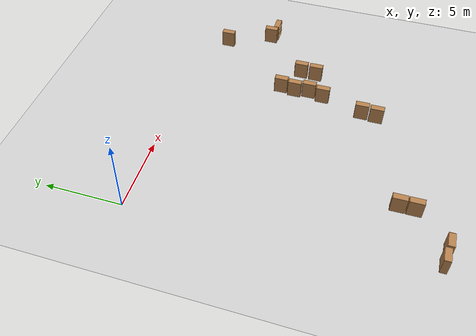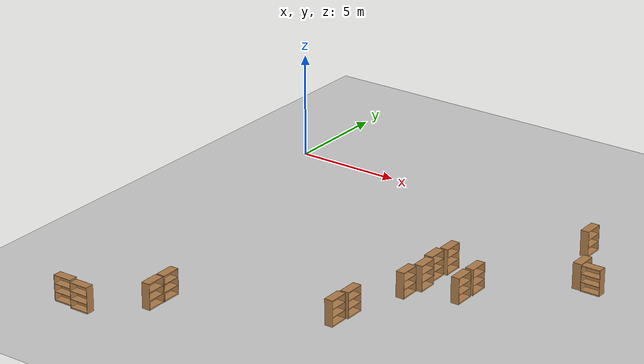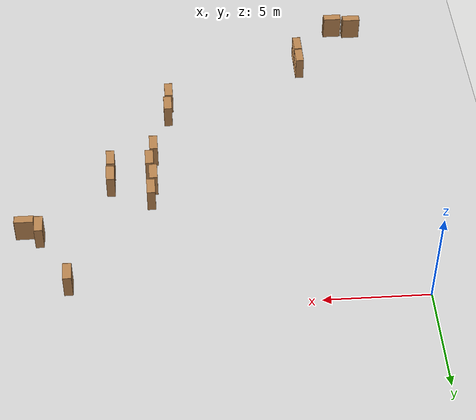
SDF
<sdf version="1.6">
 <world name="default">
  <model name="ground_plane">
   <static>1</static>
   <link name="link">
    <collision name="collision">
     <geometry><plane><normal>0 0 1</normal><size>100 100</size></plane></geometry>
     <surface>
      <contact><collide_bitmask>65535</collide_bitmask></contact>
      <friction><ode><mu>100</mu><mu2>50</mu2></ode></friction>
     </surface>
    </collision>
    <visual name="visual">
     <cast_shadows>0</cast_shadows>
     <geometry><plane><normal>0 0 1</normal><size>100 100</size></plane></geometry>
     <material>
      <script><uri>file://media/materials/scripts/gazebo.material</uri><name>Gazebo/Grey</name></script>
     </material>
    </visual>
   </link>
  </model>
  <model name="bookshelf_clone_clone_0_clone_clone_0_clone_5_clone_clone">
   <static>1</static>
   <link name="link">
    <inertial><mass>1</mass></inertial>
    <collision name="back">
     <pose>0 0.005 0.6 0 -0 0</pose>
     <geometry><box><size>0.9 0.01 1.2</size></box></geometry>
    </collision>
    <visual name="visual1">
     <pose>0 0.005 0.6 0 -0 0</pose>
     <geometry><box><size>0.9 0.01 1.2</size></box></geometry>
     <material>
      <script><uri>file://media/materials/scripts/gazebo.material</uri><name>Gazebo/Wood</name></script>
     </material>
    </visual>
    <collision name="left_side">
     <pose>0.45 -0.195 0.6 0 -0 0</pose>
     <geometry><box><size>0.02 0.4 1.2</size></box></geometry>
    </collision>
    <visual name="visual2">
     <pose>0.45 -0.195 0.6 0 -0 0</pose>
     <geometry><box><size>0.02 0.4 1.2</size></box></geometry>
     <material>
      <script><uri>file://media/materials/scripts/gazebo.material</uri><name>Gazebo/Wood</name></script>
     </material>
    </visual>
    <collision name="right_side">
     <pose>-0.45 -0.195 0.6 0 -0 0</pose>
     <geometry><box><size>0.02 0.4 1.2</size></box></geometry>
    </collision>
    <visual name="visual3">
     <pose>-0.45 -0.195 0.6 0 -0 0</pose>
     <geometry><box><size>0.02 0.4 1.2</size></box></geometry>
     <material>
      <script><uri>file://media/materials/scripts/gazebo.material</uri><name>Gazebo/Wood</name></script>
     </material>
    </visual>
    <collision name="bottom">
     <pose>0 -0.195 0.03 0 -0 0</pose>
     <geometry><box><size>0.88 0.4 0.06</size></box></geometry>
    </collision>
    <visual name="visual4">
     <pose>0 -0.195 0.03 0 -0 0</pose>
     <geometry><box><size>0.88 0.4 0.06</size></box></geometry>
     <material>
      <script><uri>file://media/materials/scripts/gazebo.material</uri><name>Gazebo/Wood</name></script>
     </material>
    </visual>
    <collision name="top">
     <pose>0 -0.195 1.19 0 -0 0</pose>
     <geometry><box><size>0.88 0.4 0.02</size></box></geometry>
    </collision>
    <visual name="visual5">
     <pose>0 -0.195 1.19 0 -0 0</pose>
     <geometry><box><size>0.88 0.4 0.02</size></box></geometry>
     <material>
      <script><uri>file://media/materials/scripts/gazebo.material</uri><name>Gazebo/Wood</name></script>
     </material>
    </visual>
    <collision name="low_shelf">
     <pose>0 -0.195 0.43 0 -0 0</pose>
     <geometry><box><size>0.88 0.4 0.02</size></box></geometry>
    </collision>
    <visual name="visual6">
     <pose>0 -0.195 0.43 0 -0 0</pose>
     <geometry><box><size>0.88 0.4 0.02</size></box></geometry>
     <material>
      <script><uri>file://media/materials/scripts/gazebo.material</uri><name>Gazebo/Wood</name></script>
     </material>
    </visual>
    <collision name="high_shelf">
     <pose>0 -0.195 0.8 0 -0 0</pose>
     <geometry><box><size>0.88 0.4 0.02</size></box></geometry>
    </collision>
    <visual name="visual7">
     <pose>0 -0.195 0.8 0 -0 0</pose>
     <geometry><box><size>0.88 0.4 0.02</size></box></geometry>
     <material>
      <script><uri>file://media/materials/scripts/gazebo.material</uri><name>Gazebo/Wood</name></script>
     </material>
    </visual>
   </link>
   <pose>11.3122 -12.3383 0 0 -0 1.58018</pose>
  </model>
  <model name="bookshelf_clone_clone_0_clone_clone_0_clone_5_clone_clone_0">
   <static>1</static>
   <link name="link">
    <inertial><mass>1</mass></inertial>
    <collision name="back">
     <pose>0 0.005 0.6 0 -0 0</pose>
     <geometry><box><size>0.9 0.01 1.2</size></box></geometry>
    </collision>
    <visual name="visual1">
     <pose>0 0.005 0.6 0 -0 0</pose>
     <geometry><box><size>0.9 0.01 1.2</size></box></geometry>
     <material>
      <script><uri>file://media/materials/scripts/gazebo.material</uri><name>Gazebo/Wood</name></script>
     </material>
    </visual>
    <collision name="left_side">
     <pose>0.45 -0.195 0.6 0 -0 0</pose>
     <geometry><box><size>0.02 0.4 1.2</size></box></geometry>
    </collision>
    <visual name="visual2">
     <pose>0.45 -0.195 0.6 0 -0 0</pose>
     <geometry><box><size>0.02 0.4 1.2</size></box></geometry>
     <material>
      <script><uri>file://media/materials/scripts/gazebo.material</uri><name>Gazebo/Wood</name></script>
     </material>
    </visual>
    <collision name="right_side">
     <pose>-0.45 -0.195 0.6 0 -0 0</pose>
     <geometry><box><size>0.02 0.4 1.2</size></box></geometry>
    </collision>
    <visual name="visual3">
     <pose>-0.45 -0.195 0.6 0 -0 0</pose>
     <geometry><box><size>0.02 0.4 1.2</size></box></geometry>
     <material>
      <script><uri>file://media/materials/scripts/gazebo.material</uri><name>Gazebo/Wood</name></script>
     </material>
    </visual>
    <collision name="bottom">
     <pose>0 -0.195 0.03 0 -0 0</pose>
     <geometry><box><size>0.88 0.4 0.06</size></box></geometry>
    </collision>
    <visual name="visual4">
     <pose>0 -0.195 0.03 0 -0 0</pose>
     <geometry><box><size>0.88 0.4 0.06</size></box></geometry>
     <material>
      <script><uri>file://media/materials/scripts/gazebo.material</uri><name>Gazebo/Wood</name></script>
     </material>
    </visual>
    <collision name="top">
     <pose>0 -0.195 1.19 0 -0 0</pose>
     <geometry><box><size>0.88 0.4 0.02</size></box></geometry>
    </collision>
    <visual name="visual5">
     <pose>0 -0.195 1.19 0 -0 0</pose>
     <geometry><box><size>0.88 0.4 0.02</size></box></geometry>
     <material>
      <script><uri>file://media/materials/scripts/gazebo.material</uri><name>Gazebo/Wood</name></script>
     </material>
    </visual>
    <collision name="low_shelf">
     <pose>0 -0.195 0.43 0 -0 0</pose>
     <geometry><box><size>0.88 0.4 0.02</size></box></geometry>
    </collision>
    <visual name="visual6">
     <pose>0 -0.195 0.43 0 -0 0</pose>
     <geometry><box><size>0.88 0.4 0.02</size></box></geometry>
     <material>
      <script><uri>file://media/materials/scripts/gazebo.material</uri><name>Gazebo/Wood</name></script>
     </material>
    </visual>
    <collision name="high_shelf">
     <pose>0 -0.195 0.8 0 -0 0</pose>
     <geometry><box><size>0.88 0.4 0.02</size></box></geometry>
    </collision>
    <visual name="visual7">
     <pose>0 -0.195 0.8 0 -0 0</pose>
     <geometry><box><size>0.88 0.4 0.02</size></box></geometry>
     <material>
      <script><uri>file://media/materials/scripts/gazebo.material</uri><name>Gazebo/Wood</name></script>
     </material>
    </visual>
   </link>
   <pose>11.2316 -13.3299 0 0 -0 1.58018</pose>
  </model>
  <model name="bookshelf_clone_clone_2_clone_7">
   <static>1</static>
   <link name="link">
    <inertial><mass>1</mass></inertial>
    <collision name="back">
     <pose>0 0.005 0.6 0 -0 0</pose>
     <geometry><box><size>0.9 0.01 1.2</size></box></geometry>
    </collision>
    <visual name="visual1">
     <pose>0 0.005 0.6 0 -0 0</pose>
     <geometry><box><size>0.9 0.01 1.2</size></box></geometry>
     <material>
      <script><uri>file://media/materials/scripts/gazebo.material</uri><name>Gazebo/Wood</name></script>
     </material>
    </visual>
    <collision name="left_side">
     <pose>0.45 -0.195 0.6 0 -0 0</pose>
     <geometry><box><size>0.02 0.4 1.2</size></box></geometry>
    </collision>
    <visual name="visual2">
     <pose>0.45 -0.195 0.6 0 -0 0</pose>
     <geometry><box><size>0.02 0.4 1.2</size></box></geometry>
     <material>
      <script><uri>file://media/materials/scripts/gazebo.material</uri><name>Gazebo/Wood</name></script>
     </material>
    </visual>
    <collision name="right_side">
     <pose>-0.45 -0.195 0.6 0 -0 0</pose>
     <geometry><box><size>0.02 0.4 1.2</size></box></geometry>
    </collision>
    <visual name="visual3">
     <pose>-0.45 -0.195 0.6 0 -0 0</pose>
     <geometry><box><size>0.02 0.4 1.2</size></box></geometry>
     <material>
      <script><uri>file://media/materials/scripts/gazebo.material</uri><name>Gazebo/Wood</name></script>
     </material>
    </visual>
    <collision name="bottom">
     <pose>0 -0.195 0.03 0 -0 0</pose>
     <geometry><box><size>0.88 0.4 0.06</size></box></geometry>
    </collision>
    <visual name="visual4">
     <pose>0 -0.195 0.03 0 -0 0</pose>
     <geometry><box><size>0.88 0.4 0.06</size></box></geometry>
     <material>
      <script><uri>file://media/materials/scripts/gazebo.material</uri><name>Gazebo/Wood</name></script>
     </material>
    </visual>
    <collision name="top">
     <pose>0 -0.195 1.19 0 -0 0</pose>
     <geometry><box><size>0.88 0.4 0.02</size></box></geometry>
    </collision>
    <visual name="visual5">
     <pose>0 -0.195 1.19 0 -0 0</pose>
     <geometry><box><size>0.88 0.4 0.02</size></box></geometry>
     <material>
      <script><uri>file://media/materials/scripts/gazebo.material</uri><name>Gazebo/Wood</name></script>
     </material>
    </visual>
    <collision name="low_shelf">
     <pose>0 -0.195 0.43 0 -0 0</pose>
     <geometry><box><size>0.88 0.4 0.02</size></box></geometry>
    </collision>
    <visual name="visual6">
     <pose>0 -0.195 0.43 0 -0 0</pose>
     <geometry><box><size>0.88 0.4 0.02</size></box></geometry>
     <material>
      <script><uri>file://media/materials/scripts/gazebo.material</uri><name>Gazebo/Wood</name></script>
     </material>
    </visual>
    <collision name="high_shelf">
     <pose>0 -0.195 0.8 0 -0 0</pose>
     <geometry><box><size>0.88 0.4 0.02</size></box></geometry>
    </collision>
    <visual name="visual7">
     <pose>0 -0.195 0.8 0 -0 0</pose>
     <geometry><box><size>0.88 0.4 0.02</size></box></geometry>
     <material>
      <script><uri>file://media/materials/scripts/gazebo.material</uri><name>Gazebo/Wood</name></script>
     </material>
    </visual>
   </link>
   <pose>1.3377 -18.2189 0 0 -0 0</pose>
  </model>
  <model name="bookshelf_clone_clone_2_clone_8">
   <static>1</static>
   <link name="link">
    <inertial><mass>1</mass></inertial>
    <collision name="back">
     <pose>0 0.005 0.6 0 -0 0</pose>
     <geometry><box><size>0.9 0.01 1.2</size></box></geometry>
    </collision>
    <visual name="visual1">
     <pose>0 0.005 0.6 0 -0 0</pose>
     <geometry><box><size>0.9 0.01 1.2</size></box></geometry>
     <material>
      <script><uri>file://media/materials/scripts/gazebo.material</uri><name>Gazebo/Wood</name></script>
     </material>
    </visual>
    <collision name="left_side">
     <pose>0.45 -0.195 0.6 0 -0 0</pose>
     <geometry><box><size>0.02 0.4 1.2</size></box></geometry>
    </collision>
    <visual name="visual2">
     <pose>0.45 -0.195 0.6 0 -0 0</pose>
     <geometry><box><size>0.02 0.4 1.2</size></box></geometry>
     <material>
      <script><uri>file://media/materials/scripts/gazebo.material</uri><name>Gazebo/Wood</name></script>
     </material>
    </visual>
    <collision name="right_side">
     <pose>-0.45 -0.195 0.6 0 -0 0</pose>
     <geometry><box><size>0.02 0.4 1.2</size></box></geometry>
    </collision>
    <visual name="visual3">
     <pose>-0.45 -0.195 0.6 0 -0 0</pose>
     <geometry><box><size>0.02 0.4 1.2</size></box></geometry>
     <material>
      <script><uri>file://media/materials/scripts/gazebo.material</uri><name>Gazebo/Wood</name></script>
     </material>
    </visual>
    <collision name="bottom">
     <pose>0 -0.195 0.03 0 -0 0</pose>
     <geometry><box><size>0.88 0.4 0.06</size></box></geometry>
    </collision>
    <visual name="visual4">
     <pose>0 -0.195 0.03 0 -0 0</pose>
     <geometry><box><size>0.88 0.4 0.06</size></box></geometry>
     <material>
      <script><uri>file://media/materials/scripts/gazebo.material</uri><name>Gazebo/Wood</name></script>
     </material>
    </visual>
    <collision name="top">
     <pose>0 -0.195 1.19 0 -0 0</pose>
     <geometry><box><size>0.88 0.4 0.02</size></box></geometry>
    </collision>
    <visual name="visual5">
     <pose>0 -0.195 1.19 0 -0 0</pose>
     <geometry><box><size>0.88 0.4 0.02</size></box></geometry>
     <material>
      <script><uri>file://media/materials/scripts/gazebo.material</uri><name>Gazebo/Wood</name></script>
     </material>
    </visual>
    <collision name="low_shelf">
     <pose>0 -0.195 0.43 0 -0 0</pose>
     <geometry><box><size>0.88 0.4 0.02</size></box></geometry>
    </collision>
    <visual name="visual6">
     <pose>0 -0.195 0.43 0 -0 0</pose>
     <geometry><box><size>0.88 0.4 0.02</size></box></geometry>
     <material>
      <script><uri>file://media/materials/scripts/gazebo.material</uri><name>Gazebo/Wood</name></script>
     </material>
    </visual>
    <collision name="high_shelf">
     <pose>0 -0.195 0.8 0 -0 0</pose>
     <geometry><box><size>0.88 0.4 0.02</size></box></geometry>
    </collision>
    <visual name="visual7">
     <pose>0 -0.195 0.8 0 -0 0</pose>
     <geometry><box><size>0.88 0.4 0.02</size></box></geometry>
     <material>
      <script><uri>file://media/materials/scripts/gazebo.material</uri><name>Gazebo/Wood</name></script>
     </material>
    </visual>
   </link>
   <pose>2.34071 -18.3606 0 0 -0 0</pose>
  </model>
  <model name="bookshelf_clone_clone_0_clone_clone_0_clone_5_clone_clone_clone">
   <static>1</static>
   <link name="link">
    <inertial><mass>1</mass></inertial>
    <collision name="back">
     <pose>0 0.005 0.6 0 -0 0</pose>
     <geometry><box><size>0.9 0.01 1.2</size></box></geometry>
    </collision>
    <visual name="visual1">
     <pose>0 0.005 0.6 0 -0 0</pose>
     <geometry><box><size>0.9 0.01 1.2</size></box></geometry>
     <material>
      <script><uri>file://media/materials/scripts/gazebo.material</uri><name>Gazebo/Wood</name></script>
     </material>
    </visual>
    <collision name="left_side">
     <pose>0.45 -0.195 0.6 0 -0 0</pose>
     <geometry><box><size>0.02 0.4 1.2</size></box></geometry>
    </collision>
    <visual name="visual2">
     <pose>0.45 -0.195 0.6 0 -0 0</pose>
     <geometry><box><size>0.02 0.4 1.2</size></box></geometry>
     <material>
      <script><uri>file://media/materials/scripts/gazebo.material</uri><name>Gazebo/Wood</name></script>
     </material>
    </visual>
    <collision name="right_side">
     <pose>-0.45 -0.195 0.6 0 -0 0</pose>
     <geometry><box><size>0.02 0.4 1.2</size></box></geometry>
    </collision>
    <visual name="visual3">
     <pose>-0.45 -0.195 0.6 0 -0 0</pose>
     <geometry><box><size>0.02 0.4 1.2</size></box></geometry>
     <material>
      <script><uri>file://media/materials/scripts/gazebo.material</uri><name>Gazebo/Wood</name></script>
     </material>
    </visual>
    <collision name="bottom">
     <pose>0 -0.195 0.03 0 -0 0</pose>
     <geometry><box><size>0.88 0.4 0.06</size></box></geometry>
    </collision>
    <visual name="visual4">
     <pose>0 -0.195 0.03 0 -0 0</pose>
     <geometry><box><size>0.88 0.4 0.06</size></box></geometry>
     <material>
      <script><uri>file://media/materials/scripts/gazebo.material</uri><name>Gazebo/Wood</name></script>
     </material>
    </visual>
    <collision name="top">
     <pose>0 -0.195 1.19 0 -0 0</pose>
     <geometry><box><size>0.88 0.4 0.02</size></box></geometry>
    </collision>
    <visual name="visual5">
     <pose>0 -0.195 1.19 0 -0 0</pose>
     <geometry><box><size>0.88 0.4 0.02</size></box></geometry>
     <material>
      <script><uri>file://media/materials/scripts/gazebo.material</uri><name>Gazebo/Wood</name></script>
     </material>
    </visual>
    <collision name="low_shelf">
     <pose>0 -0.195 0.43 0 -0 0</pose>
     <geometry><box><size>0.88 0.4 0.02</size></box></geometry>
    </collision>
    <visual name="visual6">
     <pose>0 -0.195 0.43 0 -0 0</pose>
     <geometry><box><size>0.88 0.4 0.02</size></box></geometry>
     <material>
      <script><uri>file://media/materials/scripts/gazebo.material</uri><name>Gazebo/Wood</name></script>
     </material>
    </visual>
    <collision name="high_shelf">
     <pose>0 -0.195 0.8 0 -0 0</pose>
     <geometry><box><size>0.88 0.4 0.02</size></box></geometry>
    </collision>
    <visual name="visual7">
     <pose>0 -0.195 0.8 0 -0 0</pose>
     <geometry><box><size>0.88 0.4 0.02</size></box></geometry>
     <material>
      <script><uri>file://media/materials/scripts/gazebo.material</uri><name>Gazebo/Wood</name></script>
     </material>
    </visual>
   </link>
   <pose>14.27 -7.56067 0 0 -0 1.58018</pose>
  </model>
  <model name="bookshelf_clone_clone_0_clone_clone_0_clone_5_clone_clone_clone_0">
   <static>1</static>
   <link name="link">
    <inertial><mass>1</mass></inertial>
    <collision name="back">
     <pose>0 0.005 0.6 0 -0 0</pose>
     <geometry><box><size>0.9 0.01 1.2</size></box></geometry>
    </collision>
    <visual name="visual1">
     <pose>0 0.005 0.6 0 -0 0</pose>
     <geometry><box><size>0.9 0.01 1.2</size></box></geometry>
     <material>
      <script><uri>file://media/materials/scripts/gazebo.material</uri><name>Gazebo/Wood</name></script>
     </material>
    </visual>
    <collision name="left_side">
     <pose>0.45 -0.195 0.6 0 -0 0</pose>
     <geometry><box><size>0.02 0.4 1.2</size></box></geometry>
    </collision>
    <visual name="visual2">
     <pose>0.45 -0.195 0.6 0 -0 0</pose>
     <geometry><box><size>0.02 0.4 1.2</size></box></geometry>
     <material>
      <script><uri>file://media/materials/scripts/gazebo.material</uri><name>Gazebo/Wood</name></script>
     </material>
    </visual>
    <collision name="right_side">
     <pose>-0.45 -0.195 0.6 0 -0 0</pose>
     <geometry><box><size>0.02 0.4 1.2</size></box></geometry>
    </collision>
    <visual name="visual3">
     <pose>-0.45 -0.195 0.6 0 -0 0</pose>
     <geometry><box><size>0.02 0.4 1.2</size></box></geometry>
     <material>
      <script><uri>file://media/materials/scripts/gazebo.material</uri><name>Gazebo/Wood</name></script>
     </material>
    </visual>
    <collision name="bottom">
     <pose>0 -0.195 0.03 0 -0 0</pose>
     <geometry><box><size>0.88 0.4 0.06</size></box></geometry>
    </collision>
    <visual name="visual4">
     <pose>0 -0.195 0.03 0 -0 0</pose>
     <geometry><box><size>0.88 0.4 0.06</size></box></geometry>
     <material>
      <script><uri>file://media/materials/scripts/gazebo.material</uri><name>Gazebo/Wood</name></script>
     </material>
    </visual>
    <collision name="top">
     <pose>0 -0.195 1.19 0 -0 0</pose>
     <geometry><box><size>0.88 0.4 0.02</size></box></geometry>
    </collision>
    <visual name="visual5">
     <pose>0 -0.195 1.19 0 -0 0</pose>
     <geometry><box><size>0.88 0.4 0.02</size></box></geometry>
     <material>
      <script><uri>file://media/materials/scripts/gazebo.material</uri><name>Gazebo/Wood</name></script>
     </material>
    </visual>
    <collision name="low_shelf">
     <pose>0 -0.195 0.43 0 -0 0</pose>
     <geometry><box><size>0.88 0.4 0.02</size></box></geometry>
    </collision>
    <visual name="visual6">
     <pose>0 -0.195 0.43 0 -0 0</pose>
     <geometry><box><size>0.88 0.4 0.02</size></box></geometry>
     <material>
      <script><uri>file://media/materials/scripts/gazebo.material</uri><name>Gazebo/Wood</name></script>
     </material>
    </visual>
    <collision name="high_shelf">
     <pose>0 -0.195 0.8 0 -0 0</pose>
     <geometry><box><size>0.88 0.4 0.02</size></box></geometry>
    </collision>
    <visual name="visual7">
     <pose>0 -0.195 0.8 0 -0 0</pose>
     <geometry><box><size>0.88 0.4 0.02</size></box></geometry>
     <material>
      <script><uri>file://media/materials/scripts/gazebo.material</uri><name>Gazebo/Wood</name></script>
     </material>
    </visual>
   </link>
   <pose>14.2552 -8.60884 0 0 -0 1.58018</pose>
  </model>
  <model name="bookshelf_clone_clone_2_clone_9">
   <static>1</static>
   <link name="link">
    <inertial><mass>1</mass></inertial>
    <collision name="back">
     <pose>0 0.005 0.6 0 -0 0</pose>
     <geometry><box><size>0.9 0.01 1.2</size></box></geometry>
    </collision>
    <visual name="visual1">
     <pose>0 0.005 0.6 0 -0 0</pose>
     <geometry><box><size>0.9 0.01 1.2</size></box></geometry>
     <material>
      <script><uri>file://media/materials/scripts/gazebo.material</uri><name>Gazebo/Wood</name></script>
     </material>
    </visual>
    <collision name="left_side">
     <pose>0.45 -0.195 0.6 0 -0 0</pose>
     <geometry><box><size>0.02 0.4 1.2</size></box></geometry>
    </collision>
    <visual name="visual2">
     <pose>0.45 -0.195 0.6 0 -0 0</pose>
     <geometry><box><size>0.02 0.4 1.2</size></box></geometry>
     <material>
      <script><uri>file://media/materials/scripts/gazebo.material</uri><name>Gazebo/Wood</name></script>
     </material>
    </visual>
    <collision name="right_side">
     <pose>-0.45 -0.195 0.6 0 -0 0</pose>
     <geometry><box><size>0.02 0.4 1.2</size></box></geometry>
    </collision>
    <visual name="visual3">
     <pose>-0.45 -0.195 0.6 0 -0 0</pose>
     <geometry><box><size>0.02 0.4 1.2</size></box></geometry>
     <material>
      <script><uri>file://media/materials/scripts/gazebo.material</uri><name>Gazebo/Wood</name></script>
     </material>
    </visual>
    <collision name="bottom">
     <pose>0 -0.195 0.03 0 -0 0</pose>
     <geometry><box><size>0.88 0.4 0.06</size></box></geometry>
    </collision>
    <visual name="visual4">
     <pose>0 -0.195 0.03 0 -0 0</pose>
     <geometry><box><size>0.88 0.4 0.06</size></box></geometry>
     <material>
      <script><uri>file://media/materials/scripts/gazebo.material</uri><name>Gazebo/Wood</name></script>
     </material>
    </visual>
    <collision name="top">
     <pose>0 -0.195 1.19 0 -0 0</pose>
     <geometry><box><size>0.88 0.4 0.02</size></box></geometry>
    </collision>
    <visual name="visual5">
     <pose>0 -0.195 1.19 0 -0 0</pose>
     <geometry><box><size>0.88 0.4 0.02</size></box></geometry>
     <material>
      <script><uri>file://media/materials/scripts/gazebo.material</uri><name>Gazebo/Wood</name></script>
     </material>
    </visual>
    <collision name="low_shelf">
     <pose>0 -0.195 0.43 0 -0 0</pose>
     <geometry><box><size>0.88 0.4 0.02</size></box></geometry>
    </collision>
    <visual name="visual6">
     <pose>0 -0.195 0.43 0 -0 0</pose>
     <geometry><box><size>0.88 0.4 0.02</size></box></geometry>
     <material>
      <script><uri>file://media/materials/scripts/gazebo.material</uri><name>Gazebo/Wood</name></script>
     </material>
    </visual>
    <collision name="high_shelf">
     <pose>0 -0.195 0.8 0 -0 0</pose>
     <geometry><box><size>0.88 0.4 0.02</size></box></geometry>
    </collision>
    <visual name="visual7">
     <pose>0 -0.195 0.8 0 -0 0</pose>
     <geometry><box><size>0.88 0.4 0.02</size></box></geometry>
     <material>
      <script><uri>file://media/materials/scripts/gazebo.material</uri><name>Gazebo/Wood</name></script>
     </material>
    </visual>
   </link>
   <pose>18.5176 -4.59749 0 0 -0 0</pose>
  </model>
  <model name="bookshelf_clone_clone_0_clone_clone_0_clone_5_clone_clone_clone_clone">
   <static>1</static>
   <link name="link">
    <inertial><mass>1</mass></inertial>
    <collision name="back">
     <pose>0 0.005 0.6 0 -0 0</pose>
     <geometry><box><size>0.9 0.01 1.2</size></box></geometry>
    </collision>
    <visual name="visual1">
     <pose>0 0.005 0.6 0 -0 0</pose>
     <geometry><box><size>0.9 0.01 1.2</size></box></geometry>
     <material>
      <script><uri>file://media/materials/scripts/gazebo.material</uri><name>Gazebo/Wood</name></script>
     </material>
    </visual>
    <collision name="left_side">
     <pose>0.45 -0.195 0.6 0 -0 0</pose>
     <geometry><box><size>0.02 0.4 1.2</size></box></geometry>
    </collision>
    <visual name="visual2">
     <pose>0.45 -0.195 0.6 0 -0 0</pose>
     <geometry><box><size>0.02 0.4 1.2</size></box></geometry>
     <material>
      <script><uri>file://media/materials/scripts/gazebo.material</uri><name>Gazebo/Wood</name></script>
     </material>
    </visual>
    <collision name="right_side">
     <pose>-0.45 -0.195 0.6 0 -0 0</pose>
     <geometry><box><size>0.02 0.4 1.2</size></box></geometry>
    </collision>
    <visual name="visual3">
     <pose>-0.45 -0.195 0.6 0 -0 0</pose>
     <geometry><box><size>0.02 0.4 1.2</size></box></geometry>
     <material>
      <script><uri>file://media/materials/scripts/gazebo.material</uri><name>Gazebo/Wood</name></script>
     </material>
    </visual>
    <collision name="bottom">
     <pose>0 -0.195 0.03 0 -0 0</pose>
     <geometry><box><size>0.88 0.4 0.06</size></box></geometry>
    </collision>
    <visual name="visual4">
     <pose>0 -0.195 0.03 0 -0 0</pose>
     <geometry><box><size>0.88 0.4 0.06</size></box></geometry>
     <material>
      <script><uri>file://media/materials/scripts/gazebo.material</uri><name>Gazebo/Wood</name></script>
     </material>
    </visual>
    <collision name="top">
     <pose>0 -0.195 1.19 0 -0 0</pose>
     <geometry><box><size>0.88 0.4 0.02</size></box></geometry>
    </collision>
    <visual name="visual5">
     <pose>0 -0.195 1.19 0 -0 0</pose>
     <geometry><box><size>0.88 0.4 0.02</size></box></geometry>
     <material>
      <script><uri>file://media/materials/scripts/gazebo.material</uri><name>Gazebo/Wood</name></script>
     </material>
    </visual>
    <collision name="low_shelf">
     <pose>0 -0.195 0.43 0 -0 0</pose>
     <geometry><box><size>0.88 0.4 0.02</size></box></geometry>
    </collision>
    <visual name="visual6">
     <pose>0 -0.195 0.43 0 -0 0</pose>
     <geometry><box><size>0.88 0.4 0.02</size></box></geometry>
     <material>
      <script><uri>file://media/materials/scripts/gazebo.material</uri><name>Gazebo/Wood</name></script>
     </material>
    </visual>
    <collision name="high_shelf">
     <pose>0 -0.195 0.8 0 -0 0</pose>
     <geometry><box><size>0.88 0.4 0.02</size></box></geometry>
    </collision>
    <visual name="visual7">
     <pose>0 -0.195 0.8 0 -0 0</pose>
     <geometry><box><size>0.88 0.4 0.02</size></box></geometry>
     <material>
      <script><uri>file://media/materials/scripts/gazebo.material</uri><name>Gazebo/Wood</name></script>
     </material>
    </visual>
   </link>
   <pose>17.6346 -4.48585 0 0 -0 1.58018</pose>
  </model>
  <model name="bookshelf_clone_clone_0_clone_clone_0_clone_5_clone_clone_clone_0_clone">
   <static>1</static>
   <link name="link">
    <inertial><mass>1</mass></inertial>
    <collision name="back">
     <pose>0 0.005 0.6 0 -0 0</pose>
     <geometry><box><size>0.9 0.01 1.2</size></box></geometry>
    </collision>
    <visual name="visual1">
     <pose>0 0.005 0.6 0 -0 0</pose>
     <geometry><box><size>0.9 0.01 1.2</size></box></geometry>
     <material>
      <script><uri>file://media/materials/scripts/gazebo.material</uri><name>Gazebo/Wood</name></script>
     </material>
    </visual>
    <collision name="left_side">
     <pose>0.45 -0.195 0.6 0 -0 0</pose>
     <geometry><box><size>0.02 0.4 1.2</size></box></geometry>
    </collision>
    <visual name="visual2">
     <pose>0.45 -0.195 0.6 0 -0 0</pose>
     <geometry><box><size>0.02 0.4 1.2</size></box></geometry>
     <material>
      <script><uri>file://media/materials/scripts/gazebo.material</uri><name>Gazebo/Wood</name></script>
     </material>
    </visual>
    <collision name="right_side">
     <pose>-0.45 -0.195 0.6 0 -0 0</pose>
     <geometry><box><size>0.02 0.4 1.2</size></box></geometry>
    </collision>
    <visual name="visual3">
     <pose>-0.45 -0.195 0.6 0 -0 0</pose>
     <geometry><box><size>0.02 0.4 1.2</size></box></geometry>
     <material>
      <script><uri>file://media/materials/scripts/gazebo.material</uri><name>Gazebo/Wood</name></script>
     </material>
    </visual>
    <collision name="bottom">
     <pose>0 -0.195 0.03 0 -0 0</pose>
     <geometry><box><size>0.88 0.4 0.06</size></box></geometry>
    </collision>
    <visual name="visual4">
     <pose>0 -0.195 0.03 0 -0 0</pose>
     <geometry><box><size>0.88 0.4 0.06</size></box></geometry>
     <material>
      <script><uri>file://media/materials/scripts/gazebo.material</uri><name>Gazebo/Wood</name></script>
     </material>
    </visual>
    <collision name="top">
     <pose>0 -0.195 1.19 0 -0 0</pose>
     <geometry><box><size>0.88 0.4 0.02</size></box></geometry>
    </collision>
    <visual name="visual5">
     <pose>0 -0.195 1.19 0 -0 0</pose>
     <geometry><box><size>0.88 0.4 0.02</size></box></geometry>
     <material>
      <script><uri>file://media/materials/scripts/gazebo.material</uri><name>Gazebo/Wood</name></script>
     </material>
    </visual>
    <collision name="low_shelf">
     <pose>0 -0.195 0.43 0 -0 0</pose>
     <geometry><box><size>0.88 0.4 0.02</size></box></geometry>
    </collision>
    <visual name="visual6">
     <pose>0 -0.195 0.43 0 -0 0</pose>
     <geometry><box><size>0.88 0.4 0.02</size></box></geometry>
     <material>
      <script><uri>file://media/materials/scripts/gazebo.material</uri><name>Gazebo/Wood</name></script>
     </material>
    </visual>
    <collision name="high_shelf">
     <pose>0 -0.195 0.8 0 -0 0</pose>
     <geometry><box><size>0.88 0.4 0.02</size></box></geometry>
    </collision>
    <visual name="visual7">
     <pose>0 -0.195 0.8 0 -0 0</pose>
     <geometry><box><size>0.88 0.4 0.02</size></box></geometry>
     <material>
      <script><uri>file://media/materials/scripts/gazebo.material</uri><name>Gazebo/Wood</name></script>
     </material>
    </visual>
   </link>
   <pose>12.3349 -6.56038 0 0 -0 1.58018</pose>
  </model>
  <model name="bookshelf_clone_clone_0_clone_clone_0_clone_5_clone_clone_clone_0_clone_0">
   <static>1</static>
   <link name="link">
    <inertial><mass>1</mass></inertial>
    <collision name="back">
     <pose>0 0.005 0.6 0 -0 0</pose>
     <geometry><box><size>0.9 0.01 1.2</size></box></geometry>
    </collision>
    <visual name="visual1">
     <pose>0 0.005 0.6 0 -0 0</pose>
     <geometry><box><size>0.9 0.01 1.2</size></box></geometry>
     <material>
      <script><uri>file://media/materials/scripts/gazebo.material</uri><name>Gazebo/Wood</name></script>
     </material>
    </visual>
    <collision name="left_side">
     <pose>0.45 -0.195 0.6 0 -0 0</pose>
     <geometry><box><size>0.02 0.4 1.2</size></box></geometry>
    </collision>
    <visual name="visual2">
     <pose>0.45 -0.195 0.6 0 -0 0</pose>
     <geometry><box><size>0.02 0.4 1.2</size></box></geometry>
     <material>
      <script><uri>file://media/materials/scripts/gazebo.material</uri><name>Gazebo/Wood</name></script>
     </material>
    </visual>
    <collision name="right_side">
     <pose>-0.45 -0.195 0.6 0 -0 0</pose>
     <geometry><box><size>0.02 0.4 1.2</size></box></geometry>
    </collision>
    <visual name="visual3">
     <pose>-0.45 -0.195 0.6 0 -0 0</pose>
     <geometry><box><size>0.02 0.4 1.2</size></box></geometry>
     <material>
      <script><uri>file://media/materials/scripts/gazebo.material</uri><name>Gazebo/Wood</name></script>
     </material>
    </visual>
    <collision name="bottom">
     <pose>0 -0.195 0.03 0 -0 0</pose>
     <geometry><box><size>0.88 0.4 0.06</size></box></geometry>
    </collision>
    <visual name="visual4">
     <pose>0 -0.195 0.03 0 -0 0</pose>
     <geometry><box><size>0.88 0.4 0.06</size></box></geometry>
     <material>
      <script><uri>file://media/materials/scripts/gazebo.material</uri><name>Gazebo/Wood</name></script>
     </material>
    </visual>
    <collision name="top">
     <pose>0 -0.195 1.19 0 -0 0</pose>
     <geometry><box><size>0.88 0.4 0.02</size></box></geometry>
    </collision>
    <visual name="visual5">
     <pose>0 -0.195 1.19 0 -0 0</pose>
     <geometry><box><size>0.88 0.4 0.02</size></box></geometry>
     <material>
      <script><uri>file://media/materials/scripts/gazebo.material</uri><name>Gazebo/Wood</name></script>
     </material>
    </visual>
    <collision name="low_shelf">
     <pose>0 -0.195 0.43 0 -0 0</pose>
     <geometry><box><size>0.88 0.4 0.02</size></box></geometry>
    </collision>
    <visual name="visual6">
     <pose>0 -0.195 0.43 0 -0 0</pose>
     <geometry><box><size>0.88 0.4 0.02</size></box></geometry>
     <material>
      <script><uri>file://media/materials/scripts/gazebo.material</uri><name>Gazebo/Wood</name></script>
     </material>
    </visual>
    <collision name="high_shelf">
     <pose>0 -0.195 0.8 0 -0 0</pose>
     <geometry><box><size>0.88 0.4 0.02</size></box></geometry>
    </collision>
    <visual name="visual7">
     <pose>0 -0.195 0.8 0 -0 0</pose>
     <geometry><box><size>0.88 0.4 0.02</size></box></geometry>
     <material>
      <script><uri>file://media/materials/scripts/gazebo.material</uri><name>Gazebo/Wood</name></script>
     </material>
    </visual>
   </link>
   <pose>12.1992 -7.5447 0 0 -0 1.58018</pose>
  </model>
  <model name="bookshelf_clone_clone_0_clone_clone_0_clone_5_clone_clone_clone_0_clone_1">
   <static>1</static>
   <link name="link">
    <inertial><mass>1</mass></inertial>
    <collision name="back">
     <pose>0 0.005 0.6 0 -0 0</pose>
     <geometry><box><size>0.9 0.01 1.2</size></box></geometry>
    </collision>
    <visual name="visual1">
     <pose>0 0.005 0.6 0 -0 0</pose>
     <geometry><box><size>0.9 0.01 1.2</size></box></geometry>
     <material>
      <script><uri>file://media/materials/scripts/gazebo.material</uri><name>Gazebo/Wood</name></script>
     </material>
    </visual>
    <collision name="left_side">
     <pose>0.45 -0.195 0.6 0 -0 0</pose>
     <geometry><box><size>0.02 0.4 1.2</size></box></geometry>
    </collision>
    <visual name="visual2">
     <pose>0.45 -0.195 0.6 0 -0 0</pose>
     <geometry><box><size>0.02 0.4 1.2</size></box></geometry>
     <material>
      <script><uri>file://media/materials/scripts/gazebo.material</uri><name>Gazebo/Wood</name></script>
     </material>
    </visual>
    <collision name="right_side">
     <pose>-0.45 -0.195 0.6 0 -0 0</pose>
     <geometry><box><size>0.02 0.4 1.2</size></box></geometry>
    </collision>
    <visual name="visual3">
     <pose>-0.45 -0.195 0.6 0 -0 0</pose>
     <geometry><box><size>0.02 0.4 1.2</size></box></geometry>
     <material>
      <script><uri>file://media/materials/scripts/gazebo.material</uri><name>Gazebo/Wood</name></script>
     </material>
    </visual>
    <collision name="bottom">
     <pose>0 -0.195 0.03 0 -0 0</pose>
     <geometry><box><size>0.88 0.4 0.06</size></box></geometry>
    </collision>
    <visual name="visual4">
     <pose>0 -0.195 0.03 0 -0 0</pose>
     <geometry><box><size>0.88 0.4 0.06</size></box></geometry>
     <material>
      <script><uri>file://media/materials/scripts/gazebo.material</uri><name>Gazebo/Wood</name></script>
     </material>
    </visual>
    <collision name="top">
     <pose>0 -0.195 1.19 0 -0 0</pose>
     <geometry><box><size>0.88 0.4 0.02</size></box></geometry>
    </collision>
    <visual name="visual5">
     <pose>0 -0.195 1.19 0 -0 0</pose>
     <geometry><box><size>0.88 0.4 0.02</size></box></geometry>
     <material>
      <script><uri>file://media/materials/scripts/gazebo.material</uri><name>Gazebo/Wood</name></script>
     </material>
    </visual>
    <collision name="low_shelf">
     <pose>0 -0.195 0.43 0 -0 0</pose>
     <geometry><box><size>0.88 0.4 0.02</size></box></geometry>
    </collision>
    <visual name="visual6">
     <pose>0 -0.195 0.43 0 -0 0</pose>
     <geometry><box><size>0.88 0.4 0.02</size></box></geometry>
     <material>
      <script><uri>file://media/materials/scripts/gazebo.material</uri><name>Gazebo/Wood</name></script>
     </material>
    </visual>
    <collision name="high_shelf">
     <pose>0 -0.195 0.8 0 -0 0</pose>
     <geometry><box><size>0.88 0.4 0.02</size></box></geometry>
    </collision>
    <visual name="visual7">
     <pose>0 -0.195 0.8 0 -0 0</pose>
     <geometry><box><size>0.88 0.4 0.02</size></box></geometry>
     <material>
      <script><uri>file://media/materials/scripts/gazebo.material</uri><name>Gazebo/Wood</name></script>
     </material>
    </visual>
   </link>
   <pose>12.3574 -8.5326 0 0 -0 1.58018</pose>
  </model>
  <model name="bookshelf_clone_clone_0_clone_clone_0_clone_5_clone_clone_clone_0_clone_2">
   <static>1</static>
   <link name="link">
    <inertial><mass>1</mass></inertial>
    <collision name="back">
     <pose>0 0.005 0.6 0 -0 0</pose>
     <geometry><box><size>0.9 0.01 1.2</size></box></geometry>
    </collision>
    <visual name="visual1">
     <pose>0 0.005 0.6 0 -0 0</pose>
     <geometry><box><size>0.9 0.01 1.2</size></box></geometry>
     <material>
      <script><uri>file://media/materials/scripts/gazebo.material</uri><name>Gazebo/Wood</name></script>
     </material>
    </visual>
    <collision name="left_side">
     <pose>0.45 -0.195 0.6 0 -0 0</pose>
     <geometry><box><size>0.02 0.4 1.2</size></box></geometry>
    </collision>
    <visual name="visual2">
     <pose>0.45 -0.195 0.6 0 -0 0</pose>
     <geometry><box><size>0.02 0.4 1.2</size></box></geometry>
     <material>
      <script><uri>file://media/materials/scripts/gazebo.material</uri><name>Gazebo/Wood</name></script>
     </material>
    </visual>
    <collision name="right_side">
     <pose>-0.45 -0.195 0.6 0 -0 0</pose>
     <geometry><box><size>0.02 0.4 1.2</size></box></geometry>
    </collision>
    <visual name="visual3">
     <pose>-0.45 -0.195 0.6 0 -0 0</pose>
     <geometry><box><size>0.02 0.4 1.2</size></box></geometry>
     <material>
      <script><uri>file://media/materials/scripts/gazebo.material</uri><name>Gazebo/Wood</name></script>
     </material>
    </visual>
    <collision name="bottom">
     <pose>0 -0.195 0.03 0 -0 0</pose>
     <geometry><box><size>0.88 0.4 0.06</size></box></geometry>
    </collision>
    <visual name="visual4">
     <pose>0 -0.195 0.03 0 -0 0</pose>
     <geometry><box><size>0.88 0.4 0.06</size></box></geometry>
     <material>
      <script><uri>file://media/materials/scripts/gazebo.material</uri><name>Gazebo/Wood</name></script>
     </material>
    </visual>
    <collision name="top">
     <pose>0 -0.195 1.19 0 -0 0</pose>
     <geometry><box><size>0.88 0.4 0.02</size></box></geometry>
    </collision>
    <visual name="visual5">
     <pose>0 -0.195 1.19 0 -0 0</pose>
     <geometry><box><size>0.88 0.4 0.02</size></box></geometry>
     <material>
      <script><uri>file://media/materials/scripts/gazebo.material</uri><name>Gazebo/Wood</name></script>
     </material>
    </visual>
    <collision name="low_shelf">
     <pose>0 -0.195 0.43 0 -0 0</pose>
     <geometry><box><size>0.88 0.4 0.02</size></box></geometry>
    </collision>
    <visual name="visual6">
     <pose>0 -0.195 0.43 0 -0 0</pose>
     <geometry><box><size>0.88 0.4 0.02</size></box></geometry>
     <material>
      <script><uri>file://media/materials/scripts/gazebo.material</uri><name>Gazebo/Wood</name></script>
     </material>
    </visual>
    <collision name="high_shelf">
     <pose>0 -0.195 0.8 0 -0 0</pose>
     <geometry><box><size>0.88 0.4 0.02</size></box></geometry>
    </collision>
    <visual name="visual7">
     <pose>0 -0.195 0.8 0 -0 0</pose>
     <geometry><box><size>0.88 0.4 0.02</size></box></geometry>
     <material>
      <script><uri>file://media/materials/scripts/gazebo.material</uri><name>Gazebo/Wood</name></script>
     </material>
    </visual>
   </link>
   <pose>12.1268 -9.5251 0 0 -0 1.58018</pose>
  </model>
  <model name="bookshelf_clone_clone_0_clone_clone_0_clone_5_clone_clone_0_clone">
   <static>1</static>
   <link name="link">
    <inertial><mass>1</mass></inertial>
    <collision name="back">
     <pose>0 0.005 0.6 0 -0 0</pose>
     <geometry><box><size>0.9 0.01 1.2</size></box></geometry>
    </collision>
    <visual name="visual1">
     <pose>0 0.005 0.6 0 -0 0</pose>
     <geometry><box><size>0.9 0.01 1.2</size></box></geometry>
     <material>
      <script><uri>file://media/materials/scripts/gazebo.material</uri><name>Gazebo/Wood</name></script>
     </material>
    </visual>
    <collision name="left_side">
     <pose>0.45 -0.195 0.6 0 -0 0</pose>
     <geometry><box><size>0.02 0.4 1.2</size></box></geometry>
    </collision>
    <visual name="visual2">
     <pose>0.45 -0.195 0.6 0 -0 0</pose>
     <geometry><box><size>0.02 0.4 1.2</size></box></geometry>
     <material>
      <script><uri>file://media/materials/scripts/gazebo.material</uri><name>Gazebo/Wood</name></script>
     </material>
    </visual>
    <collision name="right_side">
     <pose>-0.45 -0.195 0.6 0 -0 0</pose>
     <geometry><box><size>0.02 0.4 1.2</size></box></geometry>
    </collision>
    <visual name="visual3">
     <pose>-0.45 -0.195 0.6 0 -0 0</pose>
     <geometry><box><size>0.02 0.4 1.2</size></box></geometry>
     <material>
      <script><uri>file://media/materials/scripts/gazebo.material</uri><name>Gazebo/Wood</name></script>
     </material>
    </visual>
    <collision name="bottom">
     <pose>0 -0.195 0.03 0 -0 0</pose>
     <geometry><box><size>0.88 0.4 0.06</size></box></geometry>
    </collision>
    <visual name="visual4">
     <pose>0 -0.195 0.03 0 -0 0</pose>
     <geometry><box><size>0.88 0.4 0.06</size></box></geometry>
     <material>
      <script><uri>file://media/materials/scripts/gazebo.material</uri><name>Gazebo/Wood</name></script>
     </material>
    </visual>
    <collision name="top">
     <pose>0 -0.195 1.19 0 -0 0</pose>
     <geometry><box><size>0.88 0.4 0.02</size></box></geometry>
    </collision>
    <visual name="visual5">
     <pose>0 -0.195 1.19 0 -0 0</pose>
     <geometry><box><size>0.88 0.4 0.02</size></box></geometry>
     <material>
      <script><uri>file://media/materials/scripts/gazebo.material</uri><name>Gazebo/Wood</name></script>
     </material>
    </visual>
    <collision name="low_shelf">
     <pose>0 -0.195 0.43 0 -0 0</pose>
     <geometry><box><size>0.88 0.4 0.02</size></box></geometry>
    </collision>
    <visual name="visual6">
     <pose>0 -0.195 0.43 0 -0 0</pose>
     <geometry><box><size>0.88 0.4 0.02</size></box></geometry>
     <material>
      <script><uri>file://media/materials/scripts/gazebo.material</uri><name>Gazebo/Wood</name></script>
     </material>
    </visual>
    <collision name="high_shelf">
     <pose>0 -0.195 0.8 0 -0 0</pose>
     <geometry><box><size>0.88 0.4 0.02</size></box></geometry>
    </collision>
    <visual name="visual7">
     <pose>0 -0.195 0.8 0 -0 0</pose>
     <geometry><box><size>0.88 0.4 0.02</size></box></geometry>
     <material>
      <script><uri>file://media/materials/scripts/gazebo.material</uri><name>Gazebo/Wood</name></script>
     </material>
    </visual>
   </link>
   <pose>4.25837 -16.5379 0 0 -0 1.58018</pose>
  </model>
  <model name="bookshelf_clone_clone_0_clone_clone_0_clone_5_clone_clone_0_clone_0">
   <static>1</static>
   <link name="link">
    <inertial><mass>1</mass></inertial>
    <collision name="back">
     <pose>0 0.005 0.6 0 -0 0</pose>
     <geometry><box><size>0.9 0.01 1.2</size></box></geometry>
    </collision>
    <visual name="visual1">
     <pose>0 0.005 0.6 0 -0 0</pose>
     <geometry><box><size>0.9 0.01 1.2</size></box></geometry>
     <material>
      <script><uri>file://media/materials/scripts/gazebo.material</uri><name>Gazebo/Wood</name></script>
     </material>
    </visual>
    <collision name="left_side">
     <pose>0.45 -0.195 0.6 0 -0 0</pose>
     <geometry><box><size>0.02 0.4 1.2</size></box></geometry>
    </collision>
    <visual name="visual2">
     <pose>0.45 -0.195 0.6 0 -0 0</pose>
     <geometry><box><size>0.02 0.4 1.2</size></box></geometry>
     <material>
      <script><uri>file://media/materials/scripts/gazebo.material</uri><name>Gazebo/Wood</name></script>
     </material>
    </visual>
    <collision name="right_side">
     <pose>-0.45 -0.195 0.6 0 -0 0</pose>
     <geometry><box><size>0.02 0.4 1.2</size></box></geometry>
    </collision>
    <visual name="visual3">
     <pose>-0.45 -0.195 0.6 0 -0 0</pose>
     <geometry><box><size>0.02 0.4 1.2</size></box></geometry>
     <material>
      <script><uri>file://media/materials/scripts/gazebo.material</uri><name>Gazebo/Wood</name></script>
     </material>
    </visual>
    <collision name="bottom">
     <pose>0 -0.195 0.03 0 -0 0</pose>
     <geometry><box><size>0.88 0.4 0.06</size></box></geometry>
    </collision>
    <visual name="visual4">
     <pose>0 -0.195 0.03 0 -0 0</pose>
     <geometry><box><size>0.88 0.4 0.06</size></box></geometry>
     <material>
      <script><uri>file://media/materials/scripts/gazebo.material</uri><name>Gazebo/Wood</name></script>
     </material>
    </visual>
    <collision name="top">
     <pose>0 -0.195 1.19 0 -0 0</pose>
     <geometry><box><size>0.88 0.4 0.02</size></box></geometry>
    </collision>
    <visual name="visual5">
     <pose>0 -0.195 1.19 0 -0 0</pose>
     <geometry><box><size>0.88 0.4 0.02</size></box></geometry>
     <material>
      <script><uri>file://media/materials/scripts/gazebo.material</uri><name>Gazebo/Wood</name></script>
     </material>
    </visual>
    <collision name="low_shelf">
     <pose>0 -0.195 0.43 0 -0 0</pose>
     <geometry><box><size>0.88 0.4 0.02</size></box></geometry>
    </collision>
    <visual name="visual6">
     <pose>0 -0.195 0.43 0 -0 0</pose>
     <geometry><box><size>0.88 0.4 0.02</size></box></geometry>
     <material>
      <script><uri>file://media/materials/scripts/gazebo.material</uri><name>Gazebo/Wood</name></script>
     </material>
    </visual>
    <collision name="high_shelf">
     <pose>0 -0.195 0.8 0 -0 0</pose>
     <geometry><box><size>0.88 0.4 0.02</size></box></geometry>
    </collision>
    <visual name="visual7">
     <pose>0 -0.195 0.8 0 -0 0</pose>
     <geometry><box><size>0.88 0.4 0.02</size></box></geometry>
     <material>
      <script><uri>file://media/materials/scripts/gazebo.material</uri><name>Gazebo/Wood</name></script>
     </material>
    </visual>
   </link>
   <pose>4.25758 -15.5741 0 0 -0 1.58018</pose>
  </model>
  <model name="bookshelf_clone_clone_0_clone_clone_0_clone_5_clone_clone_clone_clone_clone_0">
   <static>1</static>
   <link name="link">
    <inertial><mass>1</mass></inertial>
    <collision name="back">
     <pose>0 0.005 0.6 0 -0 0</pose>
     <geometry><box><size>0.9 0.01 1.2</size></box></geometry>
    </collision>
    <visual name="visual1">
     <pose>0 0.005 0.6 0 -0 0</pose>
     <geometry><box><size>0.9 0.01 1.2</size></box></geometry>
     <material>
      <script><uri>file://media/materials/scripts/gazebo.material</uri><name>Gazebo/Wood</name></script>
     </material>
    </visual>
    <collision name="left_side">
     <pose>0.45 -0.195 0.6 0 -0 0</pose>
     <geometry><box><size>0.02 0.4 1.2</size></box></geometry>
    </collision>
    <visual name="visual2">
     <pose>0.45 -0.195 0.6 0 -0 0</pose>
     <geometry><box><size>0.02 0.4 1.2</size></box></geometry>
     <material>
      <script><uri>file://media/materials/scripts/gazebo.material</uri><name>Gazebo/Wood</name></script>
     </material>
    </visual>
    <collision name="right_side">
     <pose>-0.45 -0.195 0.6 0 -0 0</pose>
     <geometry><box><size>0.02 0.4 1.2</size></box></geometry>
    </collision>
    <visual name="visual3">
     <pose>-0.45 -0.195 0.6 0 -0 0</pose>
     <geometry><box><size>0.02 0.4 1.2</size></box></geometry>
     <material>
      <script><uri>file://media/materials/scripts/gazebo.material</uri><name>Gazebo/Wood</name></script>
     </material>
    </visual>
    <collision name="bottom">
     <pose>0 -0.195 0.03 0 -0 0</pose>
     <geometry><box><size>0.88 0.4 0.06</size></box></geometry>
    </collision>
    <visual name="visual4">
     <pose>0 -0.195 0.03 0 -0 0</pose>
     <geometry><box><size>0.88 0.4 0.06</size></box></geometry>
     <material>
      <script><uri>file://media/materials/scripts/gazebo.material</uri><name>Gazebo/Wood</name></script>
     </material>
    </visual>
    <collision name="top">
     <pose>0 -0.195 1.19 0 -0 0</pose>
     <geometry><box><size>0.88 0.4 0.02</size></box></geometry>
    </collision>
    <visual name="visual5">
     <pose>0 -0.195 1.19 0 -0 0</pose>
     <geometry><box><size>0.88 0.4 0.02</size></box></geometry>
     <material>
      <script><uri>file://media/materials/scripts/gazebo.material</uri><name>Gazebo/Wood</name></script>
     </material>
    </visual>
    <collision name="low_shelf">
     <pose>0 -0.195 0.43 0 -0 0</pose>
     <geometry><box><size>0.88 0.4 0.02</size></box></geometry>
    </collision>
    <visual name="visual6">
     <pose>0 -0.195 0.43 0 -0 0</pose>
     <geometry><box><size>0.88 0.4 0.02</size></box></geometry>
     <material>
      <script><uri>file://media/materials/scripts/gazebo.material</uri><name>Gazebo/Wood</name></script>
     </material>
    </visual>
    <collision name="high_shelf">
     <pose>0 -0.195 0.8 0 -0 0</pose>
     <geometry><box><size>0.88 0.4 0.02</size></box></geometry>
    </collision>
    <visual name="visual7">
     <pose>0 -0.195 0.8 0 -0 0</pose>
     <geometry><box><size>0.88 0.4 0.02</size></box></geometry>
     <material>
      <script><uri>file://media/materials/scripts/gazebo.material</uri><name>Gazebo/Wood</name></script>
     </material>
    </visual>
   </link>
   <pose>16.2611 -1.50995 0 0 -0 1.58018</pose>
  </model>
 </world>
</sdf>
